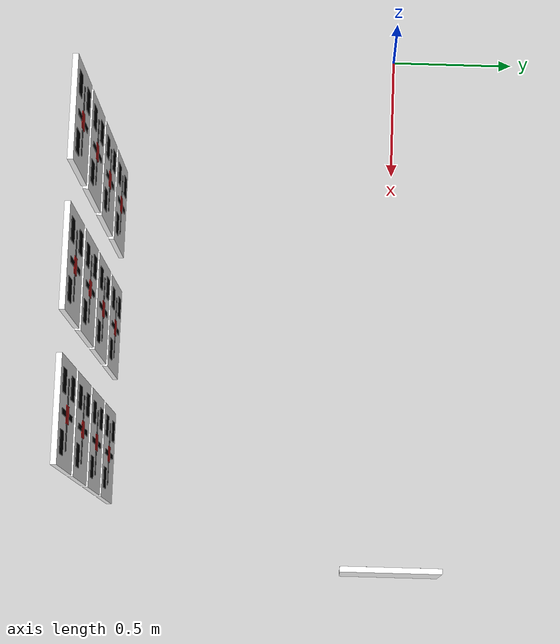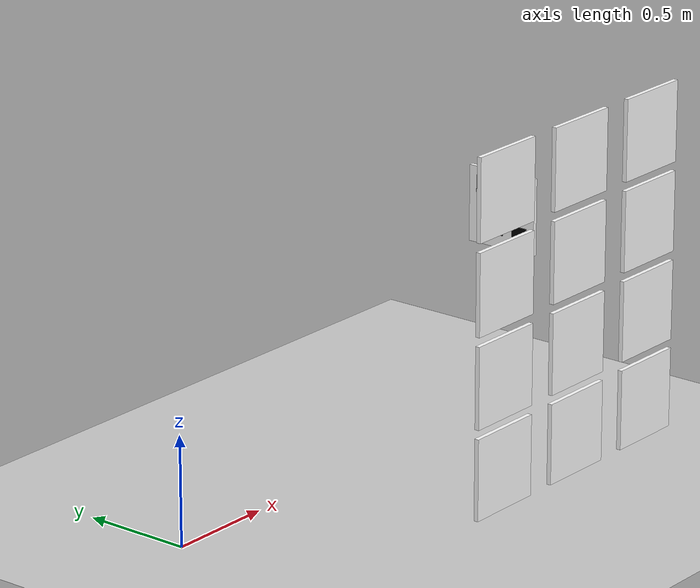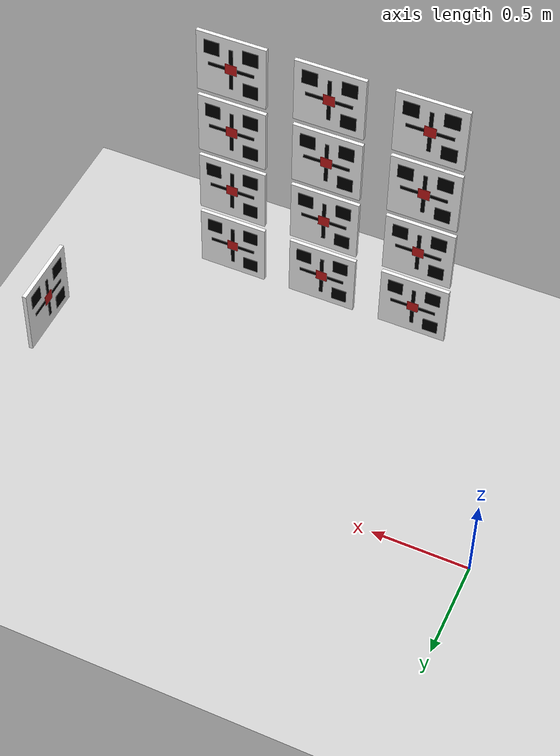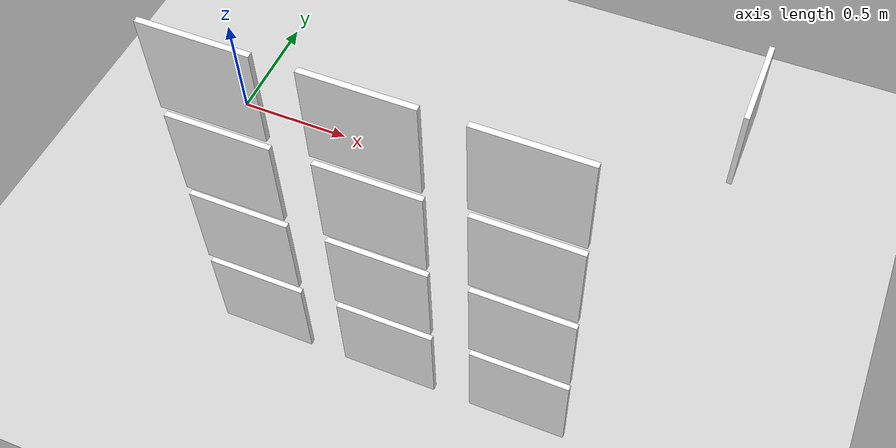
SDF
<sdf version="1.5">
 <world name="warehouse_vision">
  <include><uri>model://sun</uri></include>
  <include><uri>model://ground_plane</uri></include>
  <include><uri>model://asphalt_plane</uri></include>
  <physics name="default_physics" default="0" type="ode">
   <gravity>0 0 -9.8066</gravity>
   <ode>
    <solver>
     <type>quick</type>
     <iters>10</iters>
     <sor>1.3</sor>
     <use_dynamic_moi_rescaling>0</use_dynamic_moi_rescaling>
    </solver>
    <constraints>
     <cfm>0</cfm>
     <erp>0.2</erp>
     <contact_max_correcting_vel>100</contact_max_correcting_vel>
     <contact_surface_layer>0.001</contact_surface_layer>
    </constraints>
   </ode>
   <max_step_size>0.004</max_step_size>
   <real_time_factor>1</real_time_factor>
   <real_time_update_rate>250</real_time_update_rate>
   <magnetic_field>6.0e-6 2.3e-5 -4.2e-5</magnetic_field>
  </physics>
  <include>
   <name>startup_preview_board</name>
   <uri>model://vision_target_board</uri>
   <pose>2.20 0.00 0.90 0 0 1.5707963</pose>
  </include>
  <include>
   <name>target_x075_z040</name>
   <uri>model://vision_target_board</uri>
   <pose>0.75 -1.10 0.40 0 0 0</pose>
  </include>
  <include>
   <name>target_x125_z040</name>
   <uri>model://vision_target_board</uri>
   <pose>1.25 -1.10 0.40 0 0 0</pose>
  </include>
  <include>
   <name>target_x175_z040</name>
   <uri>model://vision_target_board</uri>
   <pose>1.75 -1.10 0.40 0 0 0</pose>
  </include>
  <include>
   <name>target_x075_z080</name>
   <uri>model://vision_target_board</uri>
   <pose>0.75 -1.10 0.80 0 0 0</pose>
  </include>
  <include>
   <name>target_x125_z080</name>
   <uri>model://vision_target_board</uri>
   <pose>1.25 -1.10 0.80 0 0 0</pose>
  </include>
  <include>
   <name>target_x175_z080</name>
   <uri>model://vision_target_board</uri>
   <pose>1.75 -1.10 0.80 0 0 0</pose>
  </include>
  <include>
   <name>target_x075_z120</name>
   <uri>model://vision_target_board</uri>
   <pose>0.75 -1.10 1.20 0 0 0</pose>
  </include>
  <include>
   <name>target_x125_z120</name>
   <uri>model://vision_target_board</uri>
   <pose>1.25 -1.10 1.20 0 0 0</pose>
  </include>
  <include>
   <name>target_x175_z120</name>
   <uri>model://vision_target_board</uri>
   <pose>1.75 -1.10 1.20 0 0 0</pose>
  </include>
  <include>
   <name>target_x075_z160</name>
   <uri>model://vision_target_board</uri>
   <pose>0.75 -1.10 1.60 0 0 0</pose>
  </include>
  <include>
   <name>target_x125_z160</name>
   <uri>model://vision_target_board</uri>
   <pose>1.25 -1.10 1.60 0 0 0</pose>
  </include>
  <include>
   <name>target_x175_z160</name>
   <uri>model://vision_target_board</uri>
   <pose>1.75 -1.10 1.60 0 0 0</pose>
  </include>
 </world>
</sdf>

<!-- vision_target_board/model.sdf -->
<sdf version="1.6">
  <model name="vision_target_board">
    <static>true</static>
    <link name="board_link">
      <collision name="board_collision">
        <geometry>
          <box>
            <size>0.36 0.02 0.36</size>
          </box>
        </geometry>
      </collision>

      <visual name="board_background">
        <geometry>
          <box>
            <size>0.36 0.02 0.36</size>
          </box>
        </geometry>
        <material>
          <ambient>1 1 1 1</ambient>
          <diffuse>1 1 1 1</diffuse>
        </material>
      </visual>

      <visual name="finder_top_left">
        <pose>-0.10 0.011 0.10 0 0 0</pose>
        <geometry>
          <box>
            <size>0.08 0.002 0.08</size>
          </box>
        </geometry>
        <material>
          <ambient>0 0 0 1</ambient>
          <diffuse>0 0 0 1</diffuse>
        </material>
      </visual>

      <visual name="finder_top_right">
        <pose>0.10 0.011 0.10 0 0 0</pose>
        <geometry>
          <box>
            <size>0.08 0.002 0.08</size>
          </box>
        </geometry>
        <material>
          <ambient>0 0 0 1</ambient>
          <diffuse>0 0 0 1</diffuse>
        </material>
      </visual>

      <visual name="finder_bottom_left">
        <pose>-0.10 0.011 -0.10 0 0 0</pose>
        <geometry>
          <box>
            <size>0.08 0.002 0.08</size>
          </box>
        </geometry>
        <material>
          <ambient>0 0 0 1</ambient>
          <diffuse>0 0 0 1</diffuse>
        </material>
      </visual>

      <visual name="center_mark">
        <pose>0.0 0.012 0.0 0 0 0</pose>
        <geometry>
          <box>
            <size>0.06 0.002 0.06</size>
          </box>
        </geometry>
        <material>
          <ambient>0.8 0.1 0.1 1</ambient>
          <diffuse>0.8 0.1 0.1 1</diffuse>
        </material>
      </visual>

      <visual name="cross_vertical">
        <pose>0.0 0.011 0.0 0 0 0</pose>
        <geometry>
          <box>
            <size>0.02 0.002 0.24</size>
          </box>
        </geometry>
        <material>
          <ambient>0 0 0 1</ambient>
          <diffuse>0 0 0 1</diffuse>
        </material>
      </visual>

      <visual name="cross_horizontal">
        <pose>0.0 0.011 0.0 0 0 0</pose>
        <geometry>
          <box>
            <size>0.24 0.002 0.02</size>
          </box>
        </geometry>
        <material>
          <ambient>0 0 0 1</ambient>
          <diffuse>0 0 0 1</diffuse>
        </material>
      </visual>
    </link>
  </model>
</sdf>
